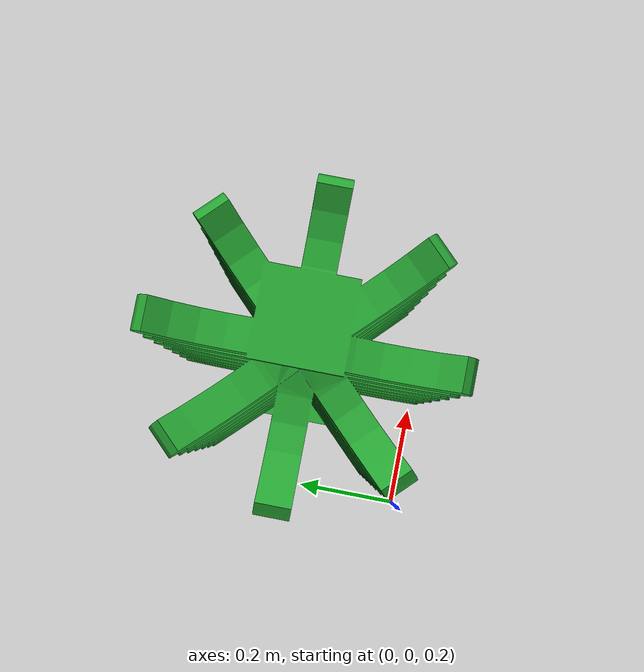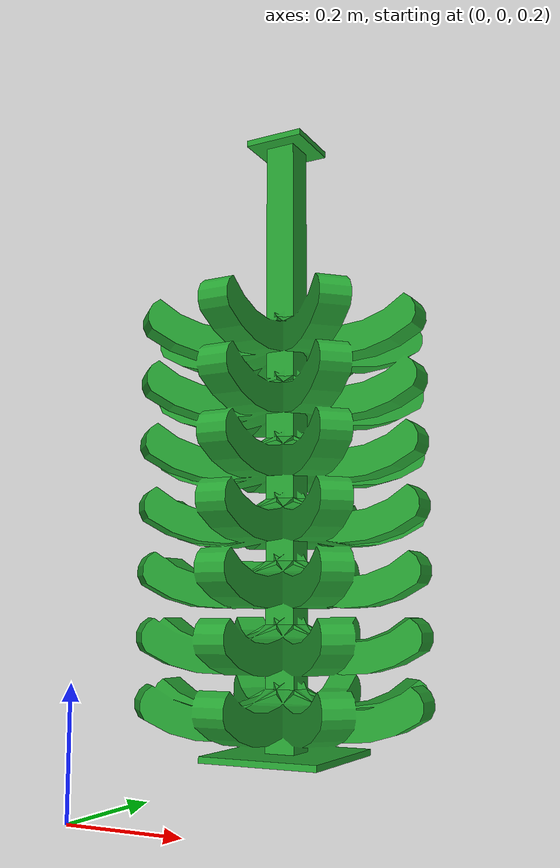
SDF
<?xml version="1.0" ?>
<sdf version="1.5">
  <model name="banana">
    <static>false</static>
    <link name="link">

	<inertial>
                <pose>0.237265 0.237265 0.51 0 0 0</pose>
                <inertia>
                    <ixx>0.001</ixx>
                    <ixy>0</ixy>
                    <ixz>0</ixz>
                    <iyy>0.001</iyy>
                    <iyz>0</iyz>
                    <izz>0.001</izz>
                </inertia>
                <mass>0.001</mass>
            </inertial>

	<collision name="collision">
        <geometry>
          <mesh>
            <uri>model://banana/meshes/banana.STL</uri>
            <scale>0.001 0.001 0.001</scale>
          </mesh>
        </geometry>
        <surface>
          <friction>
            <ode>
              <mu>50</mu>
              <mu2>100</mu2>
            </ode>
          </friction>
        </surface>
      </collision>
      <visual name="visual">
        <cast_shadows>false</cast_shadows>
        <geometry>
          <mesh>
            <uri>model://banana/meshes/banana.STL</uri>
            <scale>0.001 0.001 0.001</scale>
          </mesh>
        </geometry>
        <material>
          <script>
            <uri>file://media/materials/scripts/gazebo.material</uri>
            <name>Gazebo/Green</name>
          </script>
        </material>
      </visual>
    </link>
  </model>
</sdf>
